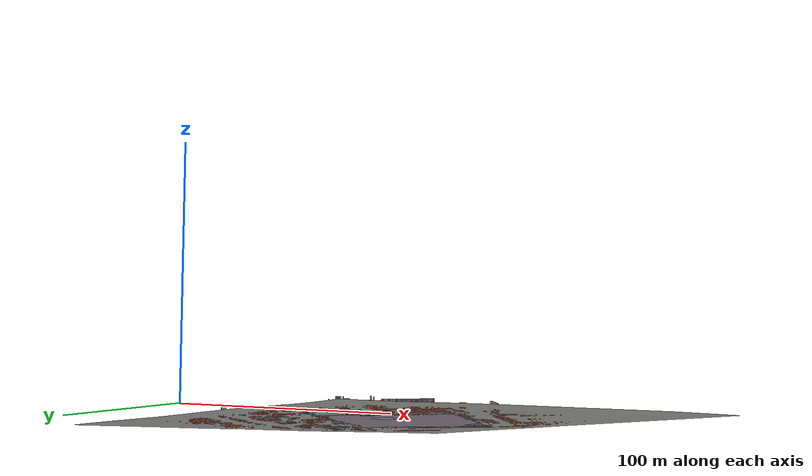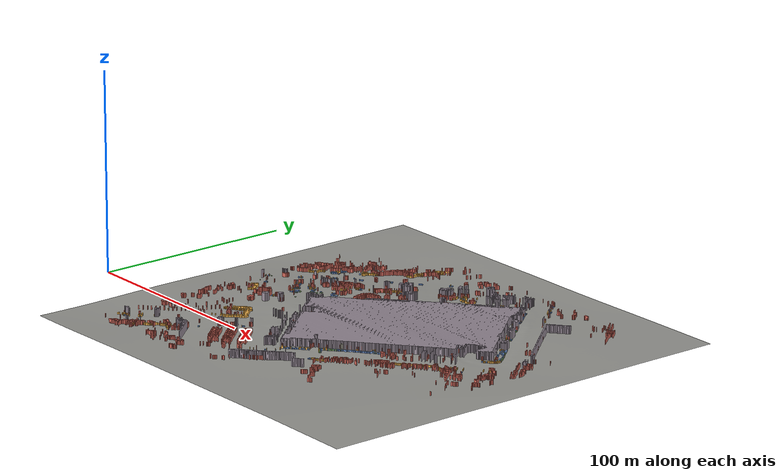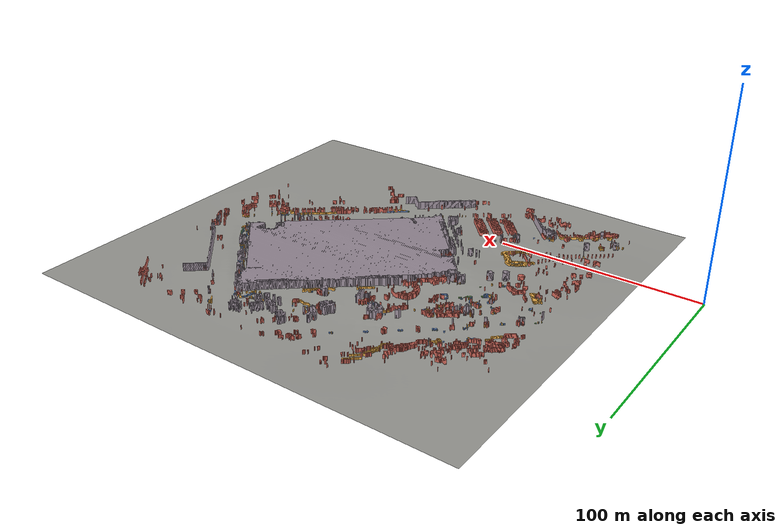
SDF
<?xml version="1.0"?>
<sdf version="1.9">
  <model name="tsukuba">
    <static>true</static>
    <link name="link">
      <collision name="terrain_collision">
        <geometry><mesh><uri>model://tsukuba/meshes/terrain.obj</uri></mesh></geometry>
      </collision>
      <visual name="terrain_visual">
        <geometry><mesh><uri>model://tsukuba/meshes/terrain.obj</uri></mesh></geometry>
        <material>
          <ambient>0.62 0.62 0.60 1</ambient>
          <diffuse>0.62 0.62 0.60 1</diffuse>
          <specular>0.05 0.05 0.05 1</specular>
        </material>
      </visual>
      <collision name="obstacles_030cm_collision">
        <geometry><mesh><uri>model://tsukuba/meshes/obstacles_030cm.obj</uri></mesh></geometry>
      </collision>
      <visual name="obstacles_030cm_visual">
        <geometry><mesh><uri>model://tsukuba/meshes/obstacles_030cm.obj</uri></mesh></geometry>
        <material>
          <ambient>0.55 0.75 0.45 1</ambient>
          <diffuse>0.55 0.75 0.45 1</diffuse>
          <specular>0.05 0.05 0.05 1</specular>
        </material>
      </visual>
      <collision name="obstacles_060cm_collision">
        <geometry><mesh><uri>model://tsukuba/meshes/obstacles_060cm.obj</uri></mesh></geometry>
      </collision>
      <visual name="obstacles_060cm_visual">
        <geometry><mesh><uri>model://tsukuba/meshes/obstacles_060cm.obj</uri></mesh></geometry>
        <material>
          <ambient>0.45 0.60 0.85 1</ambient>
          <diffuse>0.45 0.60 0.85 1</diffuse>
          <specular>0.05 0.05 0.05 1</specular>
        </material>
      </visual>
      <collision name="obstacles_100cm_collision">
        <geometry><mesh><uri>model://tsukuba/meshes/obstacles_100cm.obj</uri></mesh></geometry>
      </collision>
      <visual name="obstacles_100cm_visual">
        <geometry><mesh><uri>model://tsukuba/meshes/obstacles_100cm.obj</uri></mesh></geometry>
        <material>
          <ambient>0.95 0.70 0.30 1</ambient>
          <diffuse>0.95 0.70 0.30 1</diffuse>
          <specular>0.05 0.05 0.05 1</specular>
        </material>
      </visual>
      <collision name="obstacles_200cm_collision">
        <geometry><mesh><uri>model://tsukuba/meshes/obstacles_200cm.obj</uri></mesh></geometry>
      </collision>
      <visual name="obstacles_200cm_visual">
        <geometry><mesh><uri>model://tsukuba/meshes/obstacles_200cm.obj</uri></mesh></geometry>
        <material>
          <ambient>0.80 0.40 0.35 1</ambient>
          <diffuse>0.80 0.40 0.35 1</diffuse>
          <specular>0.05 0.05 0.05 1</specular>
        </material>
      </visual>
      <collision name="obstacles_400cm_collision">
        <geometry><mesh><uri>model://tsukuba/meshes/obstacles_400cm.obj</uri></mesh></geometry>
      </collision>
      <visual name="obstacles_400cm_visual">
        <geometry><mesh><uri>model://tsukuba/meshes/obstacles_400cm.obj</uri></mesh></geometry>
        <material>
          <ambient>0.60 0.55 0.60 1</ambient>
          <diffuse>0.60 0.55 0.60 1</diffuse>
          <specular>0.05 0.05 0.05 1</specular>
        </material>
      </visual>
      <collision name="pillars_collision">
        <geometry><mesh><uri>model://tsukuba/meshes/pillars.obj</uri></mesh></geometry>
      </collision>
      <visual name="pillars_visual">
        <geometry><mesh><uri>model://tsukuba/meshes/pillars.obj</uri></mesh></geometry>
        <material>
          <ambient>0.70 0.68 0.62 1</ambient>
          <diffuse>0.70 0.68 0.62 1</diffuse>
          <specular>0.05 0.05 0.05 1</specular>
        </material>
      </visual>
    </link>
  </model>
</sdf>
